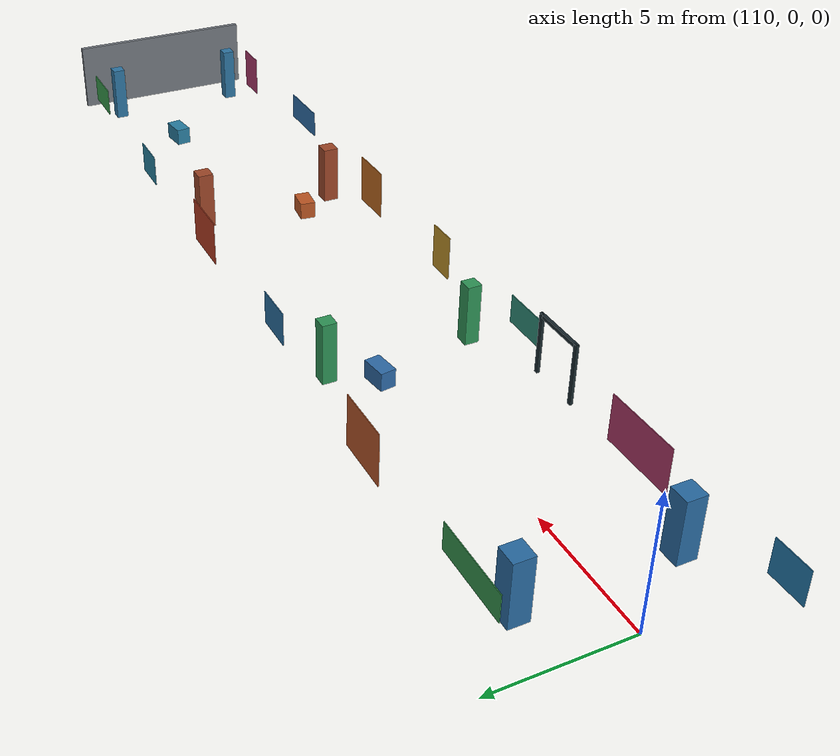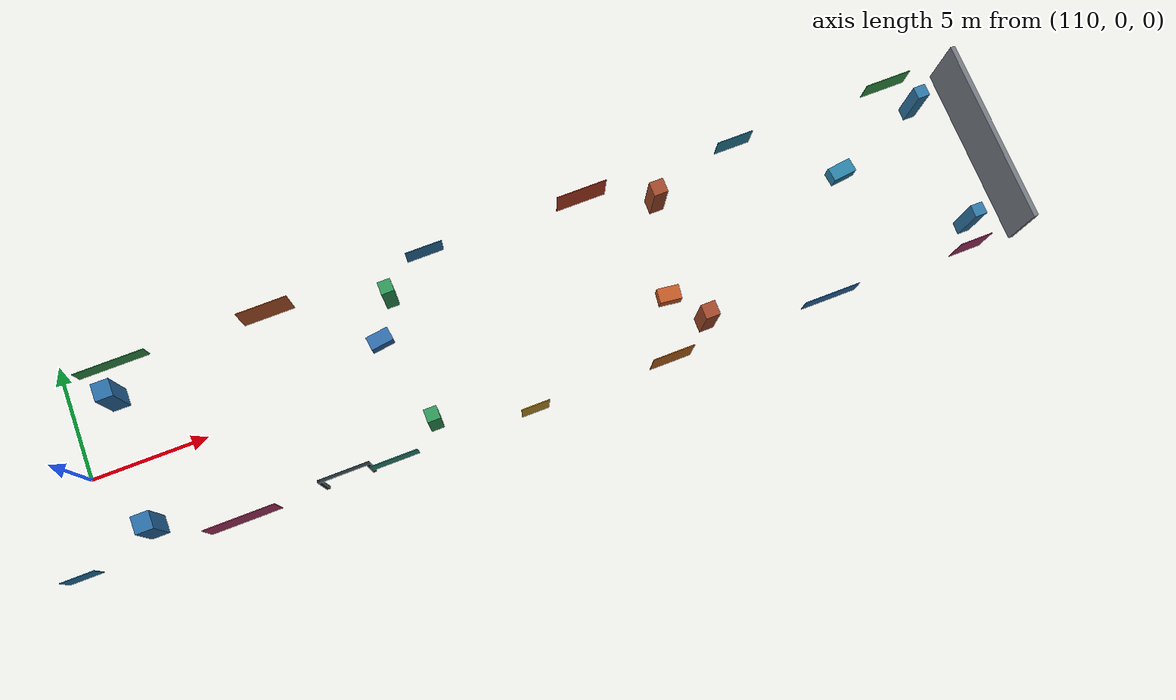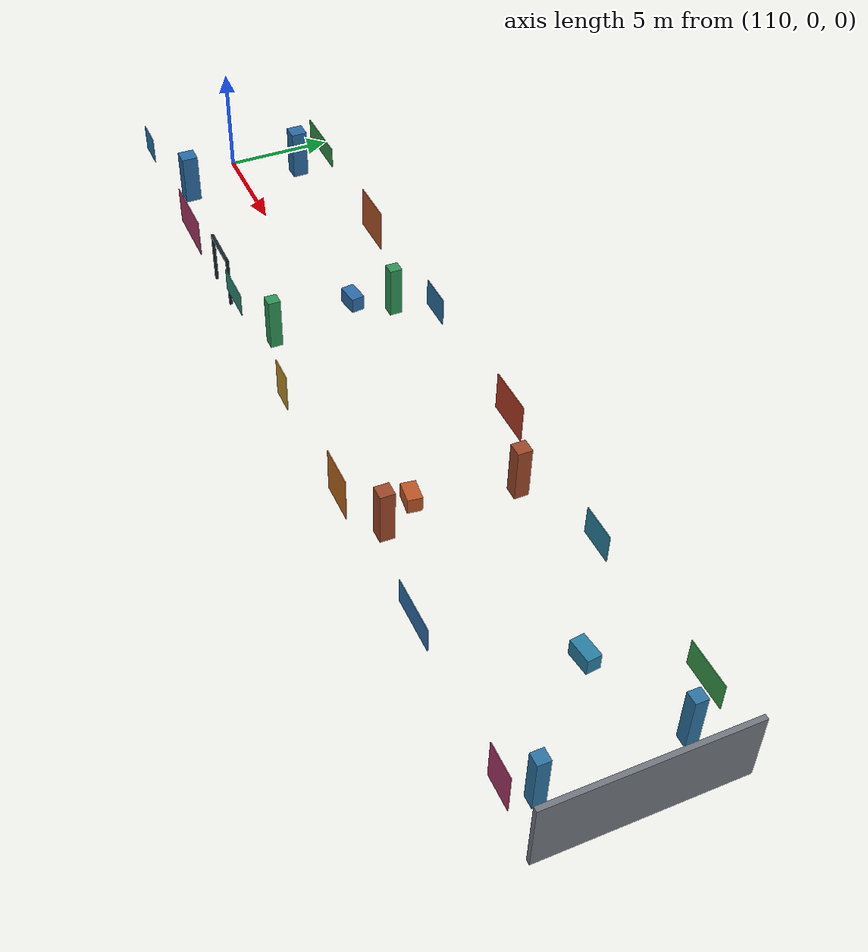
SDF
<sdf version="1.6">
 <world name="terminal_basic">
  <include><uri>model://sun</uri></include>
  <model name="left_panel_19">
   <static>true</static>
   <pose>112.5 3.88 1.7 0 0 0</pose>
   <link name="link">
    <visual name="visual">
     <geometry><box><size>3.0 0.03 1.0</size></box></geometry>
     <material><diffuse>0.20 0.58 0.30 1</diffuse></material>
    </visual>
   </link>
  </model>
  <model name="left_panel_20">
   <static>true</static>
   <pose>119 3.88 1.35 0 0 0</pose>
   <link name="link">
    <visual name="visual">
     <geometry><box><size>2.2 0.03 2.0</size></box></geometry>
     <material><diffuse>0.72 0.34 0.16 1</diffuse></material>
    </visual>
   </link>
  </model>
  <model name="left_panel_21">
   <static>true</static>
   <pose>126 3.88 1.6 0 0 0</pose>
   <link name="link">
    <visual name="visual">
     <geometry><box><size>1.6 0.03 1.3</size></box></geometry>
     <material><diffuse>0.16 0.44 0.64 1</diffuse></material>
    </visual>
   </link>
  </model>
  <model name="right_panel_17">
   <static>true</static>
   <pose>109 -3.88 1.55 0 0 0</pose>
   <link name="link">
    <visual name="visual">
     <geometry><box><size>1.4 0.03 1.3</size></box></geometry>
     <material><diffuse>0.14 0.48 0.68 1</diffuse></material>
    </visual>
   </link>
  </model>
  <model name="right_panel_18">
   <static>true</static>
   <pose>115.5 -3.88 1.1 0 0 0</pose>
   <link name="link">
    <visual name="visual">
     <geometry><box><size>3.0 0.03 1.8</size></box></geometry>
     <material><diffuse>0.68 0.22 0.40 1</diffuse></material>
    </visual>
   </link>
  </model>
  <model name="right_panel_19">
   <static>true</static>
   <pose>122 -3.88 1.65 0 0 0</pose>
   <link name="link">
    <visual name="visual">
     <geometry><box><size>2.0 0.03 1.1</size></box></geometry>
     <material><diffuse>0.18 0.56 0.48 1</diffuse></material>
    </visual>
   </link>
  </model>
  <model name="right_panel_20">
   <static>true</static>
   <pose>128 -3.88 1.25 0 0 0</pose>
   <link name="link">
    <visual name="visual">
     <geometry><box><size>1.2 0.03 1.8</size></box></geometry>
     <material><diffuse>0.76 0.58 0.16 1</diffuse></material>
    </visual>
   </link>
  </model>
  <model name="left_panel_22">
   <static>true</static>
   <pose>133 3.88 1.45 0 0 0</pose>
   <link name="link">
    <visual name="visual">
     <geometry><box><size>2.2 0.03 1.8</size></box></geometry>
     <material><diffuse>0.72 0.24 0.14 1</diffuse></material>
    </visual>
   </link>
  </model>
  <model name="left_panel_23">
   <static>true</static>
   <pose>140 3.88 1.2 0 0 0</pose>
   <link name="link">
    <visual name="visual">
     <geometry><box><size>1.6 0.03 1.3</size></box></geometry>
     <material><diffuse>0.16 0.52 0.64 1</diffuse></material>
    </visual>
   </link>
  </model>
  <model name="left_panel_24">
   <static>true</static>
   <pose>147 3.88 1.65 0 0 0</pose>
   <link name="link">
    <visual name="visual">
     <geometry><box><size>2.0 0.03 1.2</size></box></geometry>
     <material><diffuse>0.22 0.62 0.30 1</diffuse></material>
    </visual>
   </link>
  </model>
  <model name="right_panel_21">
   <static>true</static>
   <pose>134 -3.88 1.2 0 0 0</pose>
   <link name="link">
    <visual name="visual">
     <geometry><box><size>1.8 0.03 2.0</size></box></geometry>
     <material><diffuse>0.76 0.42 0.12 1</diffuse></material>
    </visual>
   </link>
  </model>
  <model name="right_panel_22">
   <static>true</static>
   <pose>141 -3.88 1.6 0 0 0</pose>
   <link name="link">
    <visual name="visual">
     <geometry><box><size>2.4 0.03 1.1</size></box></geometry>
     <material><diffuse>0.18 0.44 0.68 1</diffuse></material>
    </visual>
   </link>
  </model>
  <model name="right_panel_23">
   <static>true</static>
   <pose>147.5 -3.88 1.25 0 0 0</pose>
   <link name="link">
    <visual name="visual">
     <geometry><box><size>1.4 0.03 1.8</size></box></geometry>
     <material><diffuse>0.68 0.22 0.42 1</diffuse></material>
    </visual>
   </link>
  </model>
  <model name="door_frame_h">
   <static>true</static>
   <pose>119 -3.78 1.45 0 0 0</pose>
   <link name="link">
    <visual name="post_l">
     <geometry><box><size>0.16 0.12 2.4</size></box></geometry>
     <material><diffuse>0.10 0.16 0.18 1</diffuse></material>
    </visual>
    <visual name="post_r">
     <pose>2.0 0 0 0 0 0</pose>
     <geometry><box><size>0.16 0.12 2.4</size></box></geometry>
     <material><diffuse>0.10 0.16 0.18 1</diffuse></material>
    </visual>
    <visual name="top">
     <pose>1.0 0 1.12 0 0 0</pose>
     <geometry><box><size>2.15 0.12 0.16</size></box></geometry>
     <material><diffuse>0.10 0.16 0.18 1</diffuse></material>
    </visual>
   </link>
  </model>
  <model name="far_end_wall">
   <static>true</static>
   <pose>149.8 0 1.5 0 0 0</pose>
   <link name="link">
    <collision name="collision"><geometry><box><size>0.2 8 3</size></box></geometry></collision>
    <visual name="visual">
     <geometry><box><size>0.2 8 3</size></box></geometry>
     <material><diffuse>0.45 0.47 0.50 1</diffuse></material>
    </visual>
   </link>
  </model>
  <model name="pillar_23">
   <static>true</static>
   <pose>112 2.8 1.2 0 0 0</pose>
   <link name="link">
    <collision name="collision"><geometry><box><size>0.75 0.75 2.4</size></box></geometry></collision>
    <visual name="visual">
     <geometry><box><size>0.75 0.75 2.4</size></box></geometry>
     <material><diffuse>0.16 0.42 0.64 1</diffuse></material>
    </visual>
   </link>
  </model>
  <model name="pillar_24">
   <static>true</static>
   <pose>112 -2.8 1.2 0 0 0</pose>
   <link name="link">
    <collision name="collision"><geometry><box><size>0.75 0.75 2.4</size></box></geometry></collision>
    <visual name="visual">
     <geometry><box><size>0.75 0.75 2.4</size></box></geometry>
     <material><diffuse>0.16 0.42 0.64 1</diffuse></material>
    </visual>
   </link>
  </model>
  <model name="pillar_25">
   <static>true</static>
   <pose>124 2.8 1.2 0 0 0</pose>
   <link name="link">
    <collision name="collision"><geometry><box><size>0.55 0.55 2.4</size></box></geometry></collision>
    <visual name="visual">
     <geometry><box><size>0.55 0.55 2.4</size></box></geometry>
     <material><diffuse>0.18 0.58 0.34 1</diffuse></material>
    </visual>
   </link>
  </model>
  <model name="pillar_26">
   <static>true</static>
   <pose>124 -2.8 1.2 0 0 0</pose>
   <link name="link">
    <collision name="collision"><geometry><box><size>0.55 0.55 2.4</size></box></geometry></collision>
    <visual name="visual">
     <geometry><box><size>0.55 0.55 2.4</size></box></geometry>
     <material><diffuse>0.18 0.58 0.34 1</diffuse></material>
    </visual>
   </link>
  </model>
  <model name="pillar_27">
   <static>true</static>
   <pose>136 2.8 1.2 0 0 0</pose>
   <link name="link">
    <collision name="collision"><geometry><box><size>0.62 0.62 2.4</size></box></geometry></collision>
    <visual name="visual">
     <geometry><box><size>0.62 0.62 2.4</size></box></geometry>
     <material><diffuse>0.62 0.28 0.16 1</diffuse></material>
    </visual>
   </link>
  </model>
  <model name="pillar_28">
   <static>true</static>
   <pose>136 -2.8 1.2 0 0 0</pose>
   <link name="link">
    <collision name="collision"><geometry><box><size>0.62 0.62 2.4</size></box></geometry></collision>
    <visual name="visual">
     <geometry><box><size>0.62 0.62 2.4</size></box></geometry>
     <material><diffuse>0.62 0.28 0.16 1</diffuse></material>
    </visual>
   </link>
  </model>
  <model name="pillar_29">
   <static>true</static>
   <pose>148 2.8 1.2 0 0 0</pose>
   <link name="link">
    <collision name="collision"><geometry><box><size>0.52 0.52 2.4</size></box></geometry></collision>
    <visual name="visual">
     <geometry><box><size>0.52 0.52 2.4</size></box></geometry>
     <material><diffuse>0.18 0.46 0.64 1</diffuse></material>
    </visual>
   </link>
  </model>
  <model name="pillar_30">
   <static>true</static>
   <pose>148 -2.8 1.2 0 0 0</pose>
   <link name="link">
    <collision name="collision"><geometry><box><size>0.52 0.52 2.4</size></box></geometry></collision>
    <visual name="visual">
     <geometry><box><size>0.52 0.52 2.4</size></box></geometry>
     <material><diffuse>0.18 0.46 0.64 1</diffuse></material>
    </visual>
   </link>
  </model>
  <model name="luggage_cart_static_10">
   <static>true</static>
   <pose>123 1.25 0.42 0 0 0.14</pose>
   <link name="link">
    <visual name="visual">
     <geometry><box><size>1.00 0.60 0.72</size></box></geometry>
     <material><diffuse>0.18 0.42 0.66 1</diffuse></material>
    </visual>
   </link>
  </model>
  <model name="luggage_cart_static_11">
   <static>true</static>
   <pose>135 -1.25 0.42 0 0 -0.12</pose>
   <link name="link">
    <visual name="visual">
     <geometry><box><size>0.95 0.62 0.70</size></box></geometry>
     <material><diffuse>0.74 0.34 0.14 1</diffuse></material>
    </visual>
   </link>
  </model>
  <model name="luggage_cart_static_12">
   <static>true</static>
   <pose>144 1.2 0.45 0 0 0.12</pose>
   <link name="link">
    <visual name="visual">
     <geometry><box><size>1.05 0.60 0.72</size></box></geometry>
     <material><diffuse>0.16 0.50 0.64 1</diffuse></material>
    </visual>
   </link>
  </model>
 </world>
</sdf>
